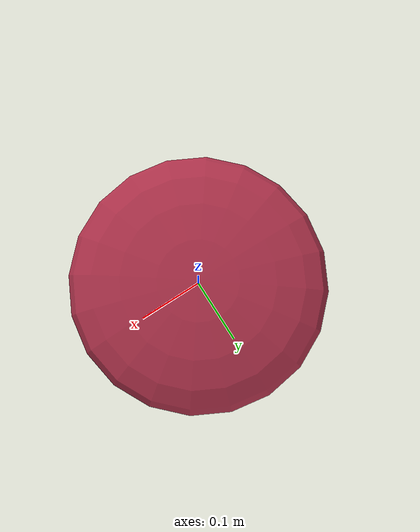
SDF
<?xml version="1.0"?>
<sdf version="1.7">
  <model name="plate">
    <link name="plate">
      <inertial>
        <mass>0.1</mass>
        <inertia>
          <ixx>0.001</ixx>
          <ixy>0</ixy>
          <ixz>0</ixz>
          <iyy>0.001</iyy>
          <iyz>0</iyz>
          <izz>0.001</izz>
        </inertia>
      </inertial>

      <visual name="visual">
        <geometry>
          <ellipsoid>
            <radii>0.2 0.2 0.04</radii>
          </ellipsoid>
        </geometry>
        <material>
          <diffuse>0.7 0.2 0.3 0.9</diffuse>
        </material>
      </visual>

      <collision name="collision">
        <geometry>
          <ellipsoid>
            <radii>0.2 0.2 0.04</radii>
          </ellipsoid>
        </geometry>
        <surface>
          <friction>
            <ode>
              <mu>1.0</mu>
              <mu2>1.0</mu2>
            </ode>
          </friction>
        </surface>
      </collision>
    </link>
  </model>
</sdf>
